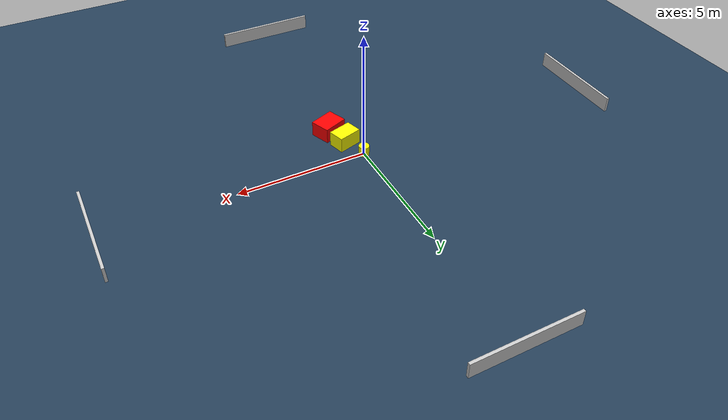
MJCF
<?xml version="1.0" ?>
<mujoco model="generated_environment">
  <option timestep="0.01" integrator="RK4" cone="elliptic"/>
  <default>
    <geom density="1"/>
  </default>
  <asset>
    <texture builtin="gradient" height="3072" name="skybox" rgb1="0.3 0.5 0.7" rgb2="0 0 0" type="skybox" width="512"/>
    <texture builtin="checker" height="300" name="groundplane" rgb1="0.2 0.3 0.4" rgb2="0.1 0.2 0.3" type="2d" width="300"/>
    <material name="groundplane" reflectance="0.2" texrepeat="5 5" texture="groundplane"/>
  </asset>
  <worldbody>
    <light dir="0 0 -1" directional="true" pos="0 0 1.5"/>
    <geom condim="3" friction="0.5 0.005 0.001" material="groundplane" name="floor" pos="0 0 0" size="0 0 0.05" type="plane"/>
    <body name="walls">
      <geom name="wall_1" condim="4" pos="-10.0 0.0 0.3" rgba="0.800000011920929 0.800000011920929 0.800000011920929 1.0" size="0.05 2.0 0.3" type="box"/>
      <geom name="wall_2" condim="4" pos="10.0 0.0 0.3" rgba="0.800000011920929 0.800000011920929 0.800000011920929 1.0" size="0.05 2.0 0.3" type="box"/>
      <geom name="wall_3" condim="4" pos="0.0 -10.0 0.3" rgba="0.800000011920929 0.800000011920929 0.800000011920929 1.0" size="2.0 0.05 0.3" type="box"/>
      <geom name="wall_4" condim="4" pos="0.0 10.0 0.3" rgba="0.800000011920929 0.800000011920929 0.800000011920929 1.0" size="2.0 0.05 0.3" type="box"/>
    </body>
    <body name="robot">
      <joint name="joint_x" type="slide" pos="0 0 0" axis="1 0 0"/>
      <joint name="joint_y" type="slide" pos="0 0 0" axis="0 1 0"/>
      <geom name="robot" type="cylinder" pos="0.0 0.0 0.2" size="0.2 0.2 0.0" mass="5.0" friction="1.0 0.005 0.0001" condim="4" rgba="1.0 1.0 0.0 1.0"/>
    </body>
    <body name="obstacle_1_movable">
      <geom name="obstacle_1_movable" condim="4" pos="0.3457498587771958 -0.9180466554987473 0.3" euler="0 0 16.253382226944698" friction="0.0 0.005 0.001" rgba="1.0 1.0 0.0 1.0" size="0.4631347764119012 0.31943895255764715 0.3" type="box" mass="0.1"/>
      <joint type="free"/>
    </body>
    <body name="obstacle_2_static">
      <geom name="obstacle_2_static" condim="4" pos="0.6171135805832816 -1.7946199708693895 0.3" euler="0 0 291.18589221619067" friction="0.0 0.005 0.001" rgba="1.0 0.0 0.0 1.0" size="0.39427664918134386 0.49200749864245524 0.3" type="box"/>
    </body>
  </worldbody>
  <actuator>
    <motor name="actuator_x" joint="joint_x" gear="1" ctrlrange="-1 1"/>
    <motor name="actuator_y" joint="joint_y" gear="1" ctrlrange="-1 1"/>
  </actuator>
</mujoco>
